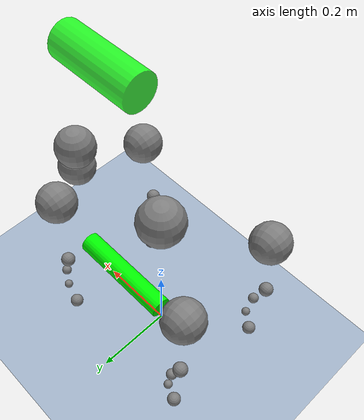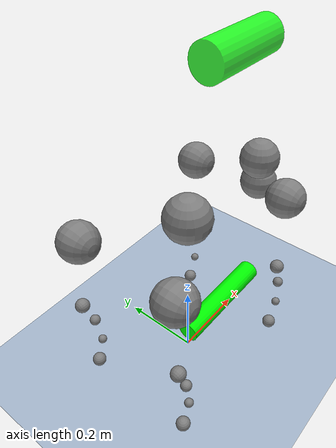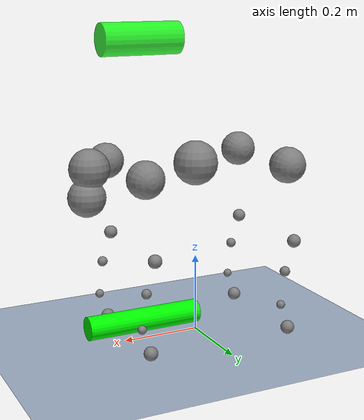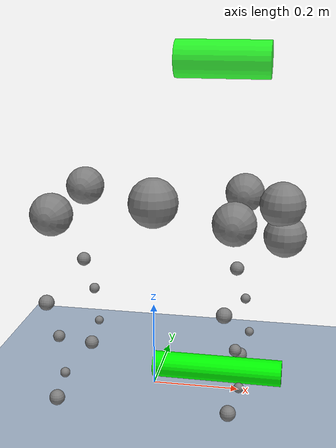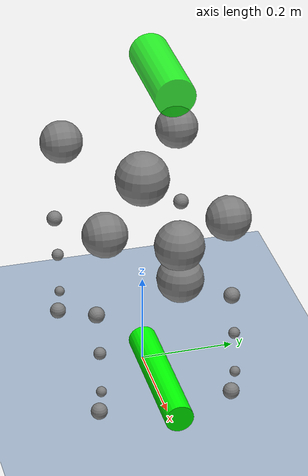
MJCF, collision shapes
<mujoco model="go2 feetonly flat terrain scene">
  <include file="go2_mjx.xml"/>
  <statistic center="0 0 0.1" extent="0.8" meansize="0.04"/>

  <visual>
    <headlight diffuse="0.6 0.6 0.6" ambient="0.3 0.3 0.3" specular="0 0 0"/>
    <rgba haze="0.15 0.25 0.35 1"/>
    <global azimuth="120" elevation="-20"/>
    <map force="0.01"/>
    <scale forcewidth="0.3" contactwidth="0.5" contactheight="0.2"/>
    <quality shadowsize="8192"/>
  </visual>

  <asset>
    <texture type="skybox" builtin="gradient" rgb1="0.4314 0.5294 0.6431" rgb2="0 0 0" width="512" height="512"/>
    <texture type="2d" name="groundplane" builtin="checker" mark="edge" rgb1="0.4314 0.5294 0.6431" rgb2="0.8157 0.8549 0.9059"
      markrgb="0.8 0.8 0.8" width="300" height="300"/>
    <material name="groundplane" texture="groundplane" texuniform="true" texrepeat="1 1" reflectance="0.2"/>
  </asset>

  <worldbody>
      <light pos="0 0 1.5" dir="0 0 -1" directional="true"/>
      <geom name="ground" size="0 0 0.01" type="plane" material="groundplane" contype="1" conaffinity="0" priority="1"
        friction="0.6" condim="3"/>
  </worldbody>

</mujoco>

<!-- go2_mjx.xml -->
<mujoco model="go2">
  <compiler angle="radian" autolimits="true"/>

  <option iterations="1" ls_iterations="5" timestep="0.004" integrator="Euler">
    <flag eulerdamp="disable"/>
  </option>

  <custom>
    <numeric data="30" name="max_contact_points"/>
    <numeric data="12" name="max_geom_pairs"/>
  </custom>

  <default>
    <default class="go2">
      <geom condim="1"/>
      <joint axis="0 1 0" damping="2" armature="0.01"/>
      <general forcerange="-24 24" biastype="affine" gainprm="80 0 0" biasprm="0 -80 -1"/>

      <default class="abduction">
        <joint axis="1 0 0" range="-1.0472 1.0472"/>
        <general ctrlrange="-0.9472 0.9472"/>
      </default>
      <default class="hip">
        <joint range="-1.5708 3.4907"/>
        <general ctrlrange="-1.4 2.5"/>
      </default>
      <default class="knee">
        <joint range="-2.7227 -0.83776"/>
        <general ctrlrange="-2.6227 -0.84776"/>
      </default>
      <default class="visual">
        <geom type="mesh" contype="0" conaffinity="0" group="0"/>
      </default>
      <default class="go2foot">
        <site pos="0 0 -0.213" type="sphere" size="0.023" group="5"/>
        <geom rgba="0.231373 0.380392 0.705882 1"/>
      </default>
      <default class="collision">
        <geom group="3"/>
        <default class="foot">
          <geom type="sphere" size="0.0175" pos="-0.002 0 -0.213" solimp="0.9 .95 0.023" condim="3"/>
        </default>
      </default>
    </default>
  </default>

  <asset>
    <material name="metal" rgba=".9 .95 .95 1"/>
    <material name="black" rgba="0 0 0 1"/>
    <material name="white" rgba="1 1 1 1"/>
    <material name="gray" rgba="0.671705 0.692426 0.774270 1"/>

    <mesh file="assets/base_0.obj"/>
    <mesh file="assets/base_1.obj"/>
    <mesh file="assets/base_2.obj"/>
    <mesh file="assets/base_3.obj"/>
    <mesh file="assets/base_4.obj"/>
    <mesh file="assets/hip_0.obj"/>
    <mesh file="assets/hip_1.obj"/>
    <mesh file="assets/thigh_0.obj"/>
    <mesh file="assets/thigh_1.obj"/>
    <mesh file="assets/thigh_mirror_0.obj"/>
    <mesh file="assets/thigh_mirror_1.obj"/>
    <mesh file="assets/calf_0.obj"/>
    <mesh file="assets/calf_1.obj"/>
    <mesh file="assets/calf_mirror_0.obj"/>
    <mesh file="assets/calf_mirror_1.obj"/>
    <mesh file="assets/foot.obj"/>

        <!-- 目标箭头mesh -->
    <mesh name="arrow_cone" file="assets/cone.stl" scale="0.003 0.003 0.003"/>

    <!-- 目标箭头材质 -->
    <material name="target_green" rgba="0 1 0 0.9"/>
  </asset>

  <worldbody>
    <light name="spotlight" mode="targetbodycom" target="base" pos="3 0 4"/>
     <!-- 目标位置标记：三维箭头 (圆柱+圆锥) -->
    <body name="target_marker" pos="0 0 0.05">
      <joint name="target_x" type="slide" axis="1 0 0" limited="false"/>
      <joint name="target_y" type="slide" axis="0 1 0" limited="false"/>
      <joint name="target_yaw" type="hinge" axis="0 0 1" limited="false"/>

      <!-- 箭头杆：圆柱体，长度0.3m，半径0.03m -->
      <geom name="arrow_shaft" type="cylinder" size="0.03 0.15"
            pos="0.15 0 0" quat="0.707107 0 0.707107 0"
            material="target_green" contype="0" conaffinity="0"/>

      <!-- 箭头头：圆锥，底部贴合圆柱末端圆面，尖端向前 -->
      <!-- 圆柱末端在 x=0.3，圆锥底部也在 x=0.3 附近 -->
      <!-- 圆锥原始朝向：尖端向+Z，需要绕Y轴旋转-90°让尖端指向+X -->
      <geom name="arrow_head" type="mesh" mesh="arrow_cone"
            pos="0.28 -0.3 0.09" quat="0.707107 0 0.707107 0"
            material="target_green" contype="0" conaffinity="0"/>
    </body>
    <body name="base" pos="0 0 0.445" childclass="go2">
      <camera name="track" pos="0.846 -1.465 0.916" xyaxes="0.866 0.500 0.000 -0.171 0.296 0.940" mode="trackcom"/>
      <camera name="head_camera" pos="0.32 0 0.04" xyaxes="0 -1 0 0 0 1"/>
      <inertial pos="0.021112 0 -0.005366" quat="-0.000543471 0.713435 -0.00173769 0.700719" mass="6.921"
        diaginertia="0.107027 0.0980771 0.0244531"/>
      <freejoint/>
      <geom mesh="base_0" material="black" class="visual"/>
      <geom mesh="base_1" material="black" class="visual"/>
      <geom mesh="base_2" material="black" class="visual"/>
      <geom mesh="base_3" material="white" class="visual"/>
      <geom mesh="base_4" material="gray" class="visual"/>
      <geom name="base_collision_0" size="0.057 0.04675 0.057" class="collision"/>
      <geom name="base_collision_1" size="0.05 0.045" pos="0.285 0 0.01" class="collision"/>
      <geom name="base_collision_2" size="0.047" pos="0.293 0 -0.06" class="collision"/>
      <site name="imu" pos="-0.02557 0 0.04232"/>
      <site name="lidar" pos="0.295 0 -0.075" quat="0.05 0 1 0" rgba="1 0 0 1" size="0.005" group="5"/>
      <body name="FL_hip" pos="0.1934 0.0465 0">
        <inertial pos="-0.0054 0.00194 -0.000105" quat="0.497014 0.499245 0.505462 0.498237" mass="0.678"
          diaginertia="0.00088403 0.000596003 0.000479967"/>
        <joint name="FL_hip_joint" class="abduction"/>
        <geom mesh="hip_0" material="metal" class="visual"/>
        <geom mesh="hip_1" material="gray" class="visual"/>
        <geom name="fl_hip_0" size="0.046 0.02" pos="0 0.08 0" quat="1 1 0 0" class="collision"/>
        <body name="FL_thigh" pos="0 0.0955 0">
          <inertial pos="-0.00374 -0.0223 -0.0327" quat="0.829533 0.0847635 -0.0200632 0.551623" mass="1.152"
            diaginertia="0.00594973 0.00584149 0.000878787"/>
          <joint name="FL_thigh_joint" class="hip"/>
          <geom mesh="thigh_0" material="metal" class="visual"/>
          <geom mesh="thigh_1" material="gray" class="visual"/>
          <geom name="fl_thigh_0" size="0.017 0.01225 0.017" pos="-0.015 0 -0.1955" quat="0.707107 0 0.707107 0" class="collision"/>
          <body name="FL_calf" pos="0 0 -0.213">
            <inertial pos="0.00629595 -0.000622121 -0.141417" quat="0.710672 0.00154099 -0.00450087 0.703508"
              mass="0.241352" diaginertia="0.0014901 0.00146356 5.31397e-05"/>
            <joint name="FL_calf_joint" class="knee"/>
            <geom mesh="calf_0" material="gray" class="visual"/>
            <geom mesh="calf_1" material="black" class="visual"/>
            <geom name="fl_calf_0" size="0.012 0.06" pos="0.008 0 -0.06" quat="0.994493 0 -0.104807 0" class="collision"/>
            <geom name="fl_calf_1" size="0.011 0.0325" pos="0.02 0 -0.148" quat="0.999688 0 0.0249974 0" class="collision"/>
            <geom pos="0 0 -0.213" mesh="foot" class="visual" material="black"/>
            <geom name="FL_foot" class="foot"/>
            <site name="FL" class="go2foot"/>
          </body>
        </body>
      </body>
      <body name="FR_hip" pos="0.1934 -0.0465 0">
        <inertial pos="-0.0054 -0.00194 -0.000105" quat="0.498237 0.505462 0.499245 0.497014" mass="0.678"
          diaginertia="0.00088403 0.000596003 0.000479967"/>
        <joint name="FR_hip_joint" class="abduction"/>
        <geom mesh="hip_0" material="metal" class="visual" quat="4.63268e-05 1 0 0"/>
        <geom mesh="hip_1" material="gray" class="visual" quat="4.63268e-05 1 0 0"/>
        <geom name="fr_hip_0" size="0.046 0.02" pos="0 -0.08 0" quat="0.707107 0.707107 0 0" class="collision"/>
        <body name="FR_thigh" pos="0 -0.0955 0">
          <inertial pos="-0.00374 0.0223 -0.0327" quat="0.551623 -0.0200632 0.0847635 0.829533" mass="1.152"
            diaginertia="0.00594973 0.00584149 0.000878787"/>
          <joint name="FR_thigh_joint" class="hip"/>
          <geom mesh="thigh_mirror_0" material="metal" class="visual"/>
          <geom mesh="thigh_mirror_1" material="gray" class="visual"/>
          <geom name="fr_thigh_0" size="0.017 0.01225 0.017" pos="-0.015 0 -0.1955" quat="0.707107 0 0.707107 0" class="collision"/>
          <body name="FR_calf" pos="0 0 -0.213">
            <inertial pos="0.00629595 0.000622121 -0.141417" quat="0.703508 -0.00450087 0.00154099 0.710672"
              mass="0.241352" diaginertia="0.0014901 0.00146356 5.31397e-05"/>
            <joint name="FR_calf_joint" class="knee"/>
            <geom mesh="calf_mirror_0" material="gray" class="visual"/>
            <geom mesh="calf_mirror_1" material="black" class="visual"/>
            <geom name="fr_calf_0" size="0.013 0.06" pos="0.01 0 -0.06" quat="0.995004 0 -0.0998334 0" class="collision"/>
            <geom name="fr_calf_1" size="0.011 0.0325" pos="0.02 0 -0.148" quat="0.999688 0 0.0249974 0" class="collision"/>
            <geom pos="0 0 -0.213" mesh="foot" class="visual" material="black"/>
            <geom name="FR_foot" class="foot"/>
            <site name="FR" class="go2foot"/>
          </body>
        </body>
      </body>
      <body name="RL_hip" pos="-0.1934 0.0465 0">
        <inertial pos="0.0054 0.00194 -0.000105" quat="0.505462 0.498237 0.497014 0.499245" mass="0.678"
          diaginertia="0.00088403 0.000596003 0.000479967"/>
        <joint name="RL_hip_joint" class="abduction"/>
        <geom mesh="hip_0" material="metal" class="visual" quat="4.63268e-05 0 1 0"/>
        <geom mesh="hip_1" material="gray" class="visual" quat="4.63268e-05 0 1 0"/>
        <geom name="rl_hip_0" size="0.046 0.02" pos="0 0.08 0" quat="0.707107 0.707107 0 0" class="collision"/>
        <body name="RL_thigh" pos="0 0.0955 0">
          <inertial pos="-0.00374 -0.0223 -0.0327" quat="0.829533 0.0847635 -0.0200632 0.551623" mass="1.152"
            diaginertia="0.00594973 0.00584149 0.000878787"/>
          <joint name="RL_thigh_joint" class="hip"/>
          <geom mesh="thigh_0" material="metal" class="visual"/>
          <geom mesh="thigh_1" material="gray" class="visual"/>
          <geom name="rl_thigh_0" size="0.017 0.01225 0.017" pos="-0.015 0 -0.1955" quat="0.707107 0 0.707107 0" class="collision"/>
          <body name="RL_calf" pos="0 0 -0.213">
            <inertial pos="0.00629595 -0.000622121 -0.141417" quat="0.710672 0.00154099 -0.00450087 0.703508"
              mass="0.241352" diaginertia="0.0014901 0.00146356 5.31397e-05"/>
            <joint name="RL_calf_joint" class="knee"/>
            <geom mesh="calf_0" material="gray" class="visual"/>
            <geom mesh="calf_1" material="black" class="visual"/>
            <geom name="rl_calf_0" size="0.013 0.06" pos="0.01 0 -0.06" quat="0.995004 0 -0.0998334 0" class="collision"/>
            <geom name="rl_calf_1" size="0.011 0.0325" pos="0.02 0 -0.148" quat="0.999688 0 0.0249974 0" class="collision"/>
            <geom pos="0 0 -0.213" mesh="foot" class="visual" material="black"/>
            <geom name="RL_foot" class="foot"/>
            <site name="RL" class="go2foot"/>
          </body>
        </body>
      </body>
      <body name="RR_hip" pos="-0.1934 -0.0465 0">
        <inertial pos="0.0054 -0.00194 -0.000105" quat="0.499245 0.497014 0.498237 0.505462" mass="0.678"
          diaginertia="0.00088403 0.000596003 0.000479967"/>
        <joint name="RR_hip_joint" class="abduction"/>
        <geom mesh="hip_0" material="metal" class="visual" quat="2.14617e-09 4.63268e-05 4.63268e-05 -1"/>
        <geom mesh="hip_1" material="gray" class="visual" quat="2.14617e-09 4.63268e-05 4.63268e-05 -1"/>
        <geom name="rr_hip_0" size="0.046 0.02" pos="0 -0.08 0" quat="0.707107 0.707107 0 0" class="collision"/>
        <body name="RR_thigh" pos="0 -0.0955 0">
          <inertial pos="-0.00374 0.0223 -0.0327" quat="0.551623 -0.0200632 0.0847635 0.829533" mass="1.152"
            diaginertia="0.00594973 0.00584149 0.000878787"/>
          <joint name="RR_thigh_joint" class="hip"/>
          <geom mesh="thigh_mirror_0" material="metal" class="visual"/>
          <geom mesh="thigh_mirror_1" material="gray" class="visual"/>
          <geom name="rr_thigh_0" size="0.017 0.01225 0.017" pos="-0.015 0 -0.1955" quat="0.707107 0 0.707107 0" class="collision"/>
          <body name="RR_calf" pos="0 0 -0.213">
            <inertial pos="0.00629595 0.000622121 -0.141417" quat="0.703508 -0.00450087 0.00154099 0.710672"
              mass="0.241352" diaginertia="0.0014901 0.00146356 5.31397e-05"/>
            <joint name="RR_calf_joint" class="knee"/>
            <geom mesh="calf_mirror_0" material="gray" class="visual"/>
            <geom mesh="calf_mirror_1" material="black" class="visual"/>
            <geom name="rr_calf_0" size="0.013 0.06" pos="0.01 0 -0.06" quat="0.995004 0 -0.0998334 0" class="collision"/>
            <geom name="rr_calf_1" size="0.011 0.0325" pos="0.02 0 -0.148" quat="0.999688 0 0.0249974 0" class="collision"/>
            <geom pos="0 0 -0.213" mesh="foot" class="visual" material="black"/>
            <geom name="RR_foot" class="foot"/>
            <site name="RR" class="go2foot"/>
          </body>
        </body>
      </body>
    </body>
    <!-- 当前朝向箭头（绿色）- 使用freejoint控制位置，不影响物理 -->
    <body name="robot_heading_arrow" pos="0 0 0.76">
      <freejoint/>
      <geom name="robot_arrow_shaft" type="cylinder" size="0.04 0.1"
            pos="0.15 0 0" quat="0.707107 0 0.707107 0"
            rgba="0 1 0 0.8" contype="0" conaffinity="0"/>
      <geom name="robot_arrow_head" type="mesh" mesh="arrow_cone"
            pos="0.23 -0.3 0.09" quat="0.707107 0 0.707107 0"
            rgba="0 1 0 0.8" contype="0" conaffinity="0"/>
    </body>

    <!-- 期望朝向箭头（蓝色）- 使用freejoint控制位置，不影响物理 -->
    <body name="desired_heading_arrow" pos="0 0 0.76">
      <freejoint/>
      <geom name="desired_arrow_shaft" type="cylinder" size="0.04 0.1"
            pos="0.15 0 0" quat="0.707107 0 0.707107 0"
            rgba="0 0 1 0.8" contype="0" conaffinity="0"/>
      <geom name="desired_arrow_head" type="mesh" mesh="arrow_cone"
            pos="0.23 -0.3 0.09" quat="0.707107 0 0.707107 0"
            rgba="0 0 1 0.8" contype="0" conaffinity="0"/>
    </body>
  </worldbody>

  <actuator>
    <general class="abduction" name="FL_hip" joint="FL_hip_joint"/>
    <general class="hip" name="FL_thigh" joint="FL_thigh_joint"/>
    <general class="knee" name="FL_calf" joint="FL_calf_joint"/>
    <general class="abduction" name="FR_hip" joint="FR_hip_joint"/>
    <general class="hip" name="FR_thigh" joint="FR_thigh_joint"/>
    <general class="knee" name="FR_calf" joint="FR_calf_joint"/>
    <general class="abduction" name="RL_hip" joint="RL_hip_joint"/>
    <general class="hip" name="RL_thigh" joint="RL_thigh_joint"/>
    <general class="knee" name="RL_calf" joint="RL_calf_joint"/>
    <general class="abduction" name="RR_hip" joint="RR_hip_joint"/>
    <general class="hip" name="RR_thigh" joint="RR_thigh_joint"/>
    <general class="knee" name="RR_calf" joint="RR_calf_joint"/>
  </actuator>

  <sensor>
    <jointpos joint="FL_hip_joint" name="abduction_front_left_pos"/>
    <jointpos joint="FL_thigh_joint" name="hip_front_left_pos"/>
    <jointpos joint="FL_calf_joint" name="knee_front_left_pos"/>
    <jointpos joint="RL_hip_joint" name="abduction_hind_left_pos"/>
    <jointpos joint="RL_thigh_joint" name="hip_hind_left_pos"/>
    <jointpos joint="RL_calf_joint" name="knee_hind_left_pos"/>
    <jointpos joint="FR_hip_joint" name="abduction_front_right_pos"/>
    <jointpos joint="FR_thigh_joint" name="hip_front_right_pos"/>
    <jointpos joint="FR_calf_joint" name="knee_front_right_pos"/>
    <jointpos joint="RR_hip_joint" name="abduction_hind_right_pos"/>
    <jointpos joint="RR_thigh_joint" name="hip_hind_right_pos"/>
    <jointpos joint="RR_calf_joint" name="knee_hind_right_pos"/>
    <jointvel joint="FL_hip_joint" name="abduction_front_left_vel"/>
    <jointvel joint="FL_thigh_joint" name="hip_front_left_vel"/>
    <jointvel joint="FL_calf_joint" name="knee_front_left_vel"/>
    <jointvel joint="RL_hip_joint" name="abduction_hind_left_vel"/>
    <jointvel joint="RL_thigh_joint" name="hip_hind_left_vel"/>
    <jointvel joint="RL_calf_joint" name="knee_hind_left_vel"/>
    <jointvel joint="FR_hip_joint" name="abduction_front_right_vel"/>
    <jointvel joint="FR_thigh_joint" name="hip_front_right_vel"/>
    <jointvel joint="FR_calf_joint" name="knee_front_right_vel"/>
    <jointvel joint="RR_hip_joint" name="abduction_hind_right_vel"/>
    <jointvel joint="RR_thigh_joint" name="hip_hind_right_vel"/>
    <jointvel joint="RR_calf_joint" name="knee_hind_right_vel"/>

    <gyro site="imu" name="gyro"/>
    <accelerometer site="imu" name="accelerometer"/>
    <velocimeter site="imu" name="local_linvel"/>
    <framezaxis objtype="site" objname="imu" name="upvector"/>
    <framequat objtype="site" objname="imu" name="orientation"/>
    <framepos objtype="site" objname="imu" name="global_position"/>
    <framelinvel objtype="site" objname="imu" name="global_linvel"/>
    <frameangvel objtype="site" objname="imu" name="global_angvel"/>

    <framelinvel objtype="site" objname="FR" name="FR_global_linvel"/>
    <framelinvel objtype="site" objname="FL" name="FL_global_linvel"/>
    <framelinvel objtype="site" objname="RR" name="RR_global_linvel"/>
    <framelinvel objtype="site" objname="RL" name="RL_global_linvel"/>

    <framepos objtype="site" objname="FR" name="FR_pos" reftype="site" refname="imu"/>
    <framepos objtype="site" objname="FL" name="FL_pos" reftype="site" refname="imu"/>
    <framepos objtype="site" objname="RR" name="RR_pos" reftype="site" refname="imu"/>
    <framepos objtype="site" objname="RL" name="RL_pos" reftype="site" refname="imu"/>
  </sensor>
</mujoco>
